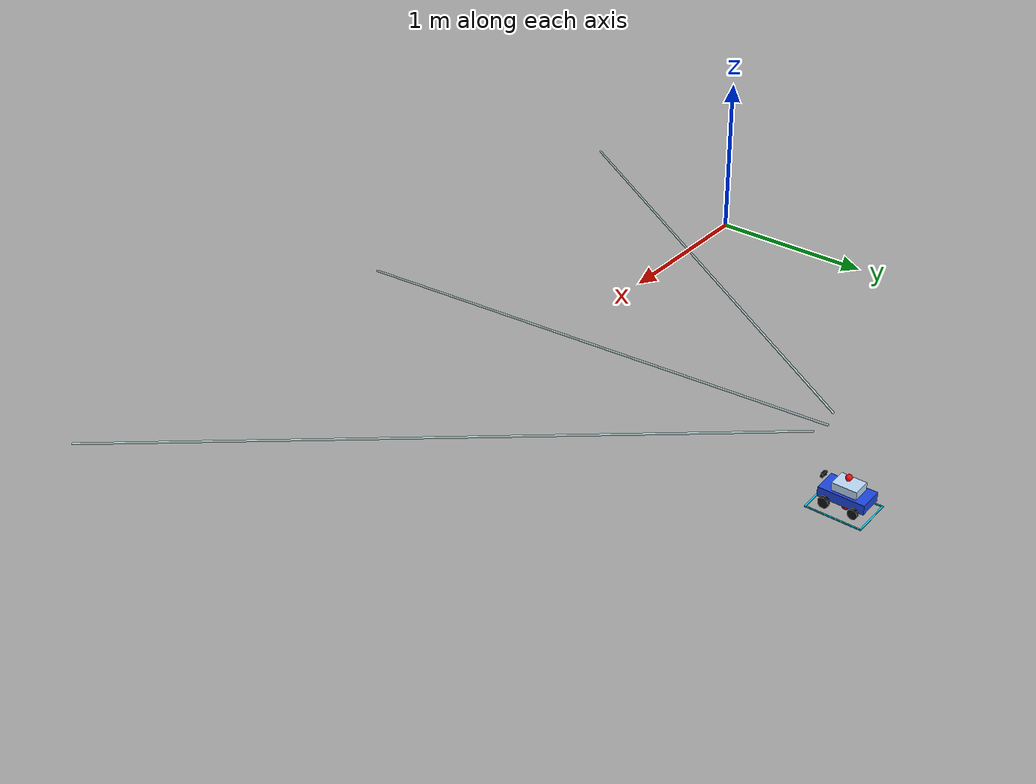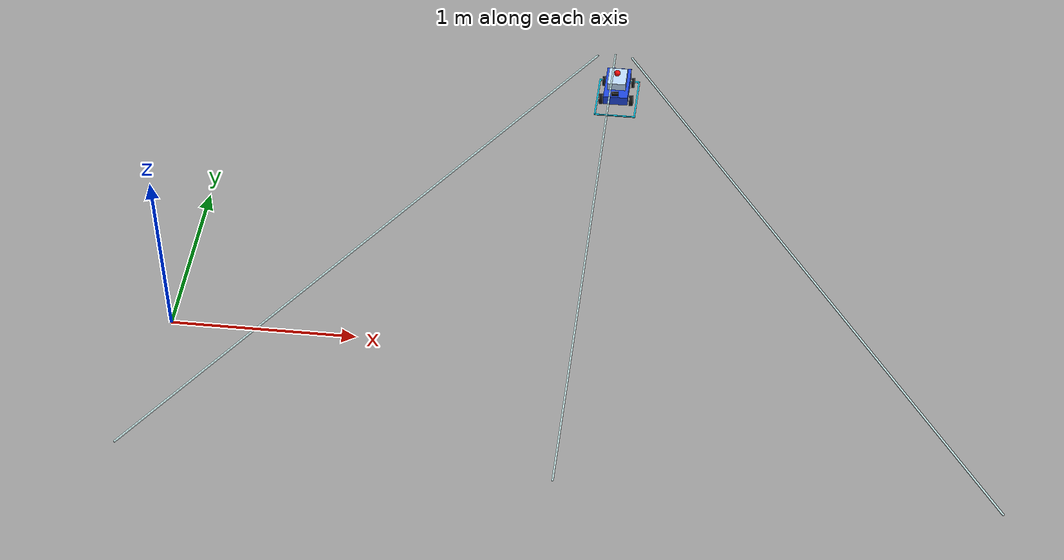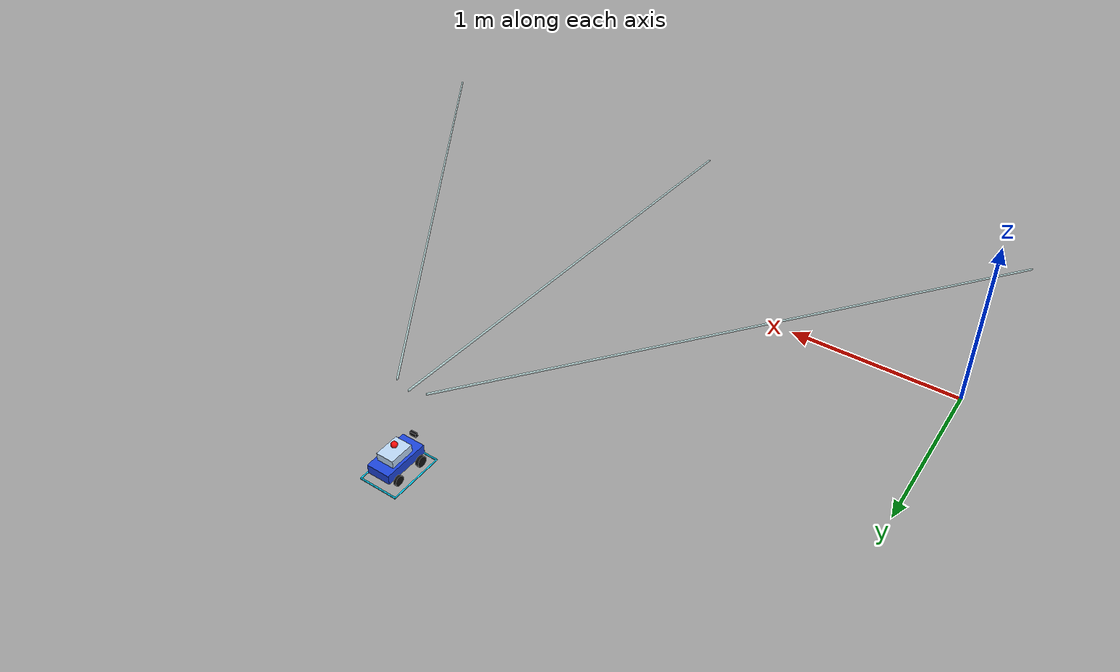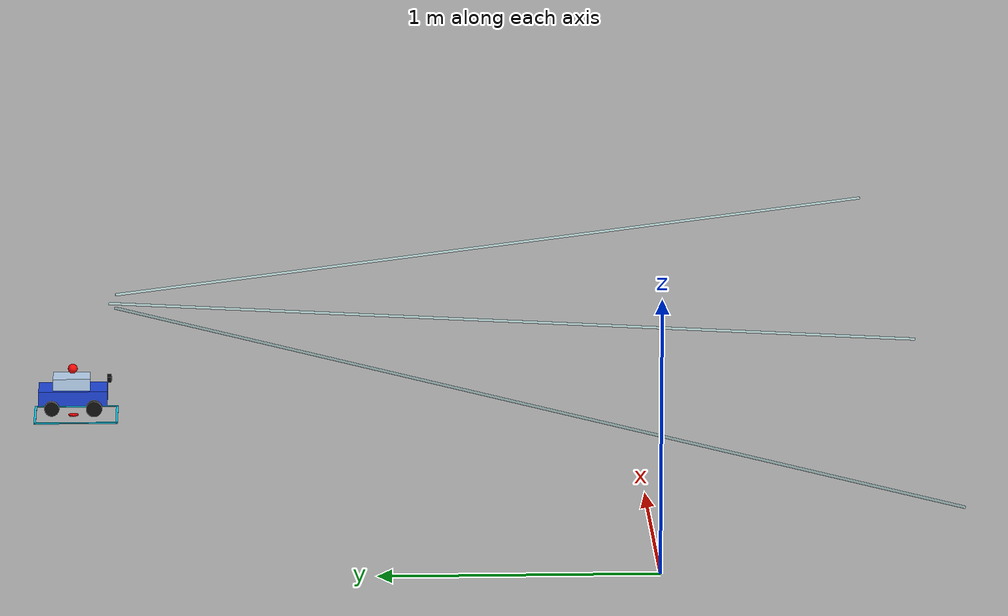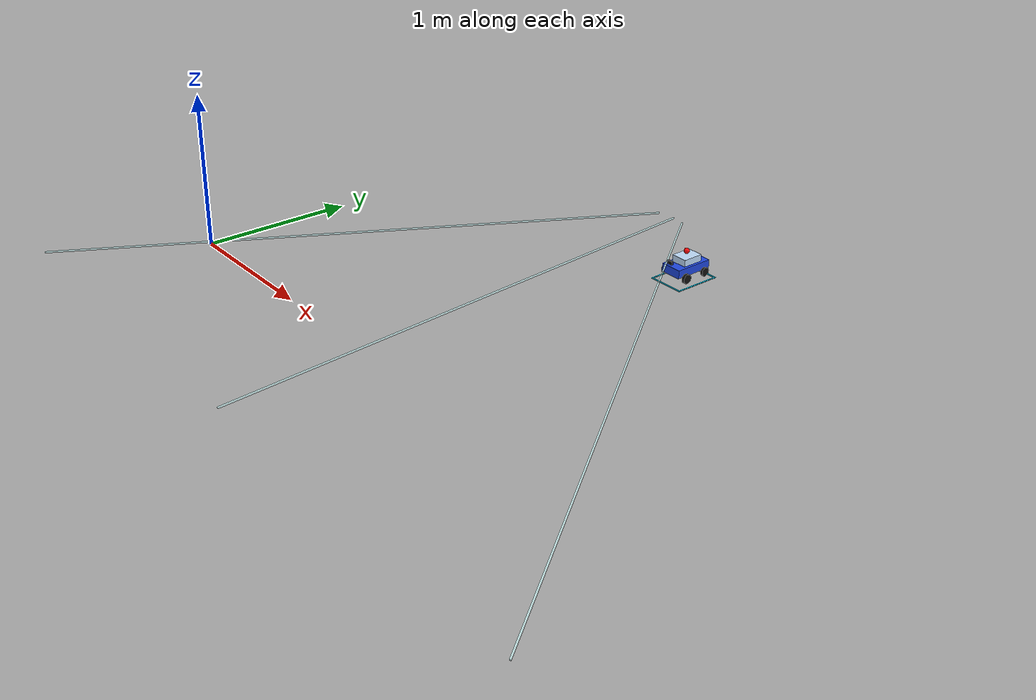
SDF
<sdf version="1.7">
 <world name="autonomous_map_3d_world">
  <plugin name="gazebo_ros_state" filename="libgazebo_ros_state.so"><update_rate>50.0</update_rate></plugin>
  <scene>
   <ambient>0.82 0.82 0.82 1</ambient>
   <background>0.86 0.91 0.98 1</background>
   <shadows>0</shadows>
  </scene>
  <light name="sun" type="directional">
   <pose>-0.000000 0.000000 10.000000 0.000000 -0.000000 3.141593</pose>
   <diffuse>0.8 0.8 0.8 1</diffuse>
   <specular>0.2 0.2 0.2 1</specular>
   <attenuation>
    <range>1000</range>
    <constant>0.9</constant>
    <linear>0.01</linear>
    <quadratic>0.001</quadratic>
   </attenuation>
   <direction>-0.5 0.1 -0.9</direction>
   <spot><inner_angle>0</inner_angle><outer_angle>0</outer_angle><falloff>0</falloff></spot>
  </light>
  <light name="key_light" type="directional">
   <cast_shadows>0</cast_shadows>
   <pose>-0.000000 0.000000 6.000000 0.000000 -0.000000 3.141593</pose>
   <diffuse>0.92 0.92 0.9 1</diffuse>
   <specular>0.15 0.15 0.15 1</specular>
   <direction>-0.3 0.35 -1</direction>
   <attenuation><range>10</range></attenuation>
   <spot><inner_angle>0</inner_angle><outer_angle>0</outer_angle><falloff>0</falloff></spot>
  </light>
  <light name="fill_light" type="directional">
   <cast_shadows>0</cast_shadows>
   <pose>-0.000000 0.000000 6.000000 0.000000 -0.000000 3.141593</pose>
   <diffuse>0.42 0.46 0.52 1</diffuse>
   <specular>0.05 0.05 0.05 1</specular>
   <direction>0.3 -0.2 -1</direction>
   <attenuation><range>10</range></attenuation>
   <spot><inner_angle>0</inner_angle><outer_angle>0</outer_angle><falloff>0</falloff></spot>
  </light>
  <model name="track_preview_car">
   <static>0</static>
   <allow_auto_disable>0</allow_auto_disable>
   <link name="body">
    <inertial>
     <mass>1</mass>
     <inertia><ixx>0.01</ixx><iyy>0.01</iyy><izz>0.01</izz><ixy>0</ixy><ixz>0</ixz><iyz>0</iyz></inertia>
    </inertial>
    <visual name="chassis_visual">
     <pose>0 0 0.065 0 -0 0</pose>
     <geometry><box><size>0.26 0.14 0.055</size></box></geometry>
     <material>
      <ambient>0.08 0.2 0.7 1</ambient>
      <diffuse>0.12 0.28 0.88 1</diffuse>
      <specular>0.1 0.1 0.1 1</specular>
     </material>
    </visual>
    <visual name="roof_visual">
     <pose>-0.005 0 0.115 0 -0 0</pose>
     <geometry><box><size>0.14 0.105 0.045</size></box></geometry>
     <material>
      <ambient>0.65 0.78 0.95 0.92</ambient>
      <diffuse>0.75 0.86 0.98 0.92</diffuse>
      <specular>0.1 0.1 0.1 1</specular>
     </material>
    </visual>
    <visual name="front_marker_visual">
     <pose>0.105 0 0.083 0 -0 0</pose>
     <geometry><box><size>0.025 0.075 0.018</size></box></geometry>
     <material>
      <ambient>1 0.85 0.2 1</ambient>
      <diffuse>1 0.88 0.25 1</diffuse>
      <specular>0.05 0.05 0.05 1</specular>
     </material>
    </visual>
    <visual name="camera_lens_visual">
     <pose>0.138 0 0.126 0 -0 0</pose>
     <geometry><box><size>0.016 0.04 0.022</size></box></geometry>
     <material>
      <ambient>0.02 0.02 0.025 1</ambient>
      <diffuse>0.04 0.04 0.05 1</diffuse>
      <specular>0.05 0.05 0.05 1</specular>
     </material>
    </visual>
    <visual name="camera_view_left_ray_visual">
     <pose>1.67 1.15 0.335 -0 0.0505 0.6109</pose>
     <geometry><box><size>3.68 0.008 0.008</size></box></geometry>
     <material>
      <ambient>0.85 1 1 0.82</ambient>
      <diffuse>0.85 1 1 0.82</diffuse>
      <emissive>0.2 0.55 0.75 1</emissive>
     </material>
    </visual>
    <visual name="camera_view_center_ray_visual">
     <pose>1.67 0 0.335 0 0.0555 0</pose>
     <geometry><box><size>3.0647 0.008 0.008</size></box></geometry>
     <material>
      <ambient>0.85 1 1 0.82</ambient>
      <diffuse>0.85 1 1 0.82</diffuse>
      <emissive>0.2 0.55 0.75 1</emissive>
     </material>
    </visual>
    <visual name="camera_view_right_ray_visual">
     <pose>1.67 -1.15 0.335 0 0.0505 -0.6109</pose>
     <geometry><box><size>3.68 0.008 0.008</size></box></geometry>
     <material>
      <ambient>0.85 1 1 0.82</ambient>
      <diffuse>0.85 1 1 0.82</diffuse>
      <emissive>0.2 0.55 0.75 1</emissive>
     </material>
    </visual>
    <visual name="debug_origin_marker_visual">
     <pose>0 0 0.165 0 -0 0</pose>
     <geometry><sphere><radius>0.018</radius></sphere></geometry>
     <material>
      <ambient>1 0.02 0.02 1</ambient>
      <diffuse>1 0.04 0.04 1</diffuse>
      <specular>0.08 0.08 0.08 1</specular>
     </material>
    </visual>
    <visual name="debug_ground_origin_visual">
     <pose>0 0 -0.017 0 -0 0</pose>
     <geometry><cylinder><radius>0.018</radius><length>0.004</length></cylinder></geometry>
     <material>
      <ambient>1 0.02 0.02 1</ambient>
      <diffuse>1 0.04 0.04 1</diffuse>
      <specular>0.08 0.08 0.08 1</specular>
     </material>
    </visual>
    <visual name="debug_ground_footprint_front_visual">
     <pose>0.165 0 -0.017 0 -0 0</pose>
     <geometry><box><size>0.008 0.238 0.004</size></box></geometry>
     <material>
      <ambient>0 0.7 1 1</ambient>
      <diffuse>0.05 0.86 1 1</diffuse>
      <specular>0.02 0.02 0.02 1</specular>
     </material>
    </visual>
    <visual name="debug_ground_footprint_rear_visual">
     <pose>-0.145 0 -0.017 0 -0 0</pose>
     <geometry><box><size>0.008 0.238 0.004</size></box></geometry>
     <material>
      <ambient>0 0.7 1 1</ambient>
      <diffuse>0.05 0.86 1 1</diffuse>
      <specular>0.02 0.02 0.02 1</specular>
     </material>
    </visual>
    <visual name="debug_ground_footprint_left_visual">
     <pose>0.01 0.115 -0.017 0 -0 0</pose>
     <geometry><box><size>0.318 0.008 0.004</size></box></geometry>
     <material>
      <ambient>0 0.7 1 1</ambient>
      <diffuse>0.05 0.86 1 1</diffuse>
      <specular>0.02 0.02 0.02 1</specular>
     </material>
    </visual>
    <visual name="debug_ground_footprint_right_visual">
     <pose>0.01 -0.115 -0.017 0 -0 0</pose>
     <geometry><box><size>0.318 0.008 0.004</size></box></geometry>
     <material>
      <ambient>0 0.7 1 1</ambient>
      <diffuse>0.05 0.86 1 1</diffuse>
      <specular>0.02 0.02 0.02 1</specular>
     </material>
    </visual>
    <visual name="rear_left_dummy_wheel_visual">
     <pose>-0.08 0.085 0.032 1.5708 -0 0</pose>
     <geometry><cylinder><radius>0.028</radius><length>0.016</length></cylinder></geometry>
     <material>
      <ambient>0.03 0.03 0.03 1</ambient>
      <diffuse>0.07 0.07 0.07 1</diffuse>
      <specular>0.02 0.02 0.02 1</specular>
     </material>
    </visual>
    <visual name="rear_right_dummy_wheel_visual">
     <pose>-0.08 -0.085 0.032 1.5708 -0 0</pose>
     <geometry><cylinder><radius>0.028</radius><length>0.016</length></cylinder></geometry>
     <material>
      <ambient>0.03 0.03 0.03 1</ambient>
      <diffuse>0.07 0.07 0.07 1</diffuse>
      <specular>0.02 0.02 0.02 1</specular>
     </material>
    </visual>
    <collision name="rear_left_caster_collision">
     <pose>-0.095 0.072 0.026 0 -0 0</pose>
     <geometry><sphere><radius>0.024</radius></sphere></geometry>
     <surface><friction><ode><mu>0.05</mu><mu2>0.05</mu2></ode></friction></surface>
    </collision>
    <collision name="rear_right_caster_collision">
     <pose>-0.095 -0.072 0.026 0 -0 0</pose>
     <geometry><sphere><radius>0.024</radius></sphere></geometry>
     <surface><friction><ode><mu>0.05</mu><mu2>0.05</mu2></ode></friction></surface>
    </collision>
    <collision name="body_collision">
     <pose>0 0 0.065 0 -0 0</pose>
     <geometry><box><size>0.26 0.14 0.05</size></box></geometry>
    </collision>
    <sensor name="front_camera" type="camera">
     <pose>0.14 0 0.42 0 0.18 0</pose>
     <always_on>1</always_on>
     <update_rate>30</update_rate>
     <visualize>0</visualize>
     <camera>
      <horizontal_fov>2.45</horizontal_fov>
      <image><width>960</width><height>540</height><format>R8G8B8</format></image>
      <clip><near>0.02</near><far>6</far></clip>
     </camera>
     <plugin name="front_camera_controller" filename="libgazebo_ros_camera.so">
      <ros>
       <namespace>/track_preview_car</namespace>
       <remapping>image_raw:=image_raw</remapping>
       <remapping>camera_info:=camera_info</remapping>
      </ros>
      <camera_name>camera</camera_name>
      <frame_name>track_preview_car/front_camera</frame_name>
     </plugin>
    </sensor>
   </link>
   <link name="left_wheel">
    <pose>0.08 0.088 0.032 0 -0 0</pose>
    <inertial>
     <mass>0.08</mass>
     <inertia><ixx>5e-05</ixx><iyy>8e-05</iyy><izz>5e-05</izz><ixy>0</ixy><ixz>0</ixz><iyz>0</iyz></inertia>
    </inertial>
    <visual name="left_wheel_visual">
     <pose>0 0 0 1.5708 -0 0</pose>
     <geometry><cylinder><radius>0.03</radius><length>0.02</length></cylinder></geometry>
     <material>
      <ambient>0.03 0.03 0.03 1</ambient>
      <diffuse>0.07 0.07 0.07 1</diffuse>
      <specular>0.02 0.02 0.02 1</specular>
     </material>
    </visual>
    <collision name="left_wheel_collision">
     <pose>0 0 0 1.5708 -0 0</pose>
     <geometry><cylinder><radius>0.03</radius><length>0.02</length></cylinder></geometry>
     <surface><friction><ode><mu>1.2</mu><mu2>1.2</mu2></ode></friction></surface>
    </collision>
   </link>
   <link name="right_wheel">
    <pose>0.08 -0.088 0.032 0 -0 0</pose>
    <inertial>
     <mass>0.08</mass>
     <inertia><ixx>5e-05</ixx><iyy>8e-05</iyy><izz>5e-05</izz><ixy>0</ixy><ixz>0</ixz><iyz>0</iyz></inertia>
    </inertial>
    <visual name="right_wheel_visual">
     <pose>0 0 0 1.5708 -0 0</pose>
     <geometry><cylinder><radius>0.03</radius><length>0.02</length></cylinder></geometry>
     <material>
      <ambient>0.03 0.03 0.03 1</ambient>
      <diffuse>0.07 0.07 0.07 1</diffuse>
      <specular>0.02 0.02 0.02 1</specular>
     </material>
    </visual>
    <collision name="right_wheel_collision">
     <pose>0 0 0 1.5708 -0 0</pose>
     <geometry><cylinder><radius>0.03</radius><length>0.02</length></cylinder></geometry>
     <surface><friction><ode><mu>1.2</mu><mu2>1.2</mu2></ode></friction></surface>
    </collision>
   </link>
   <joint name="left_wheel_joint" type="revolute">
    <parent>body</parent>
    <child>left_wheel</child>
    <axis>
     <xyz>0 1 0</xyz>
     <limit><lower>-1e+16</lower><upper>1e+16</upper></limit>
     <dynamics><spring_reference>0</spring_reference><spring_stiffness>0</spring_stiffness></dynamics>
    </axis>
   </joint>
   <joint name="right_wheel_joint" type="revolute">
    <parent>body</parent>
    <child>right_wheel</child>
    <axis>
     <xyz>0 1 0</xyz>
     <limit><lower>-1e+16</lower><upper>1e+16</upper></limit>
     <dynamics><spring_reference>0</spring_reference><spring_stiffness>0</spring_stiffness></dynamics>
    </axis>
   </joint>
   <plugin name="track_preview_car_diff_drive" filename="libgazebo_ros_diff_drive.so">
    <ros>
     <namespace>/track_preview_car</namespace>
     <remapping>cmd_vel:=cmd_vel</remapping>
     <remapping>odom:=odom</remapping>
    </ros>
    <left_joint>left_wheel_joint</left_joint>
    <right_joint>right_wheel_joint</right_joint>
    <wheel_separation>0.176</wheel_separation>
    <wheel_diameter>0.06</wheel_diameter>
    <max_wheel_torque>2.0</max_wheel_torque>
    <max_wheel_acceleration>8.0</max_wheel_acceleration>
    <odometry_frame>odom</odometry_frame>
    <robot_base_frame>body</robot_base_frame>
    <publish_odom>1</publish_odom>
    <publish_odom_tf>0</publish_odom_tf>
    <publish_wheel_tf>0</publish_wheel_tf>
    <update_rate>50</update_rate>
   </plugin>
   <pose>2.179688 2.104687 -0.002000 0.000000 -0.000000 -1.570796</pose>
  </model>
  <physics name="default_physics" default="1" type="ode">
   <max_step_size>0.001</max_step_size>
   <real_time_update_rate>1000</real_time_update_rate>
   <real_time_factor>1</real_time_factor>
  </physics>
  <gravity>0 0 -9.8</gravity>
  <magnetic_field>6e-06 2.3e-05 -4.2e-05</magnetic_field>
  <atmosphere type="adiabatic"/>
  <spherical_coordinates>
   <surface_model>EARTH_WGS84</surface_model>
   <latitude_deg>0</latitude_deg>
   <longitude_deg>0</longitude_deg>
   <elevation>0</elevation>
   <heading_deg>0</heading_deg>
  </spherical_coordinates>
 </world>
</sdf>
